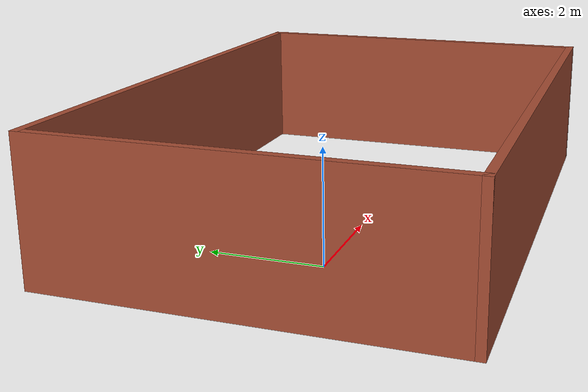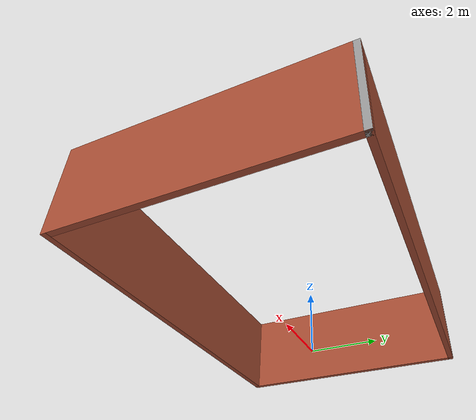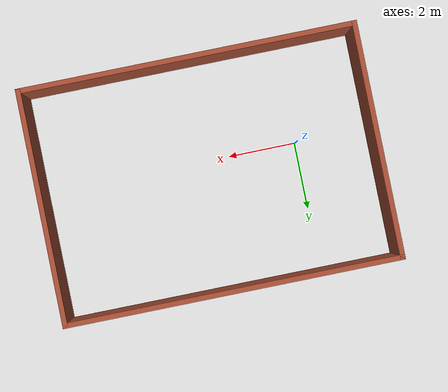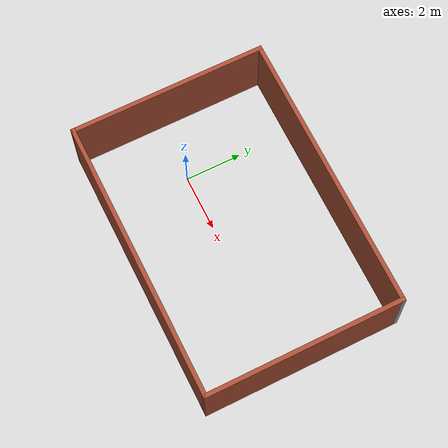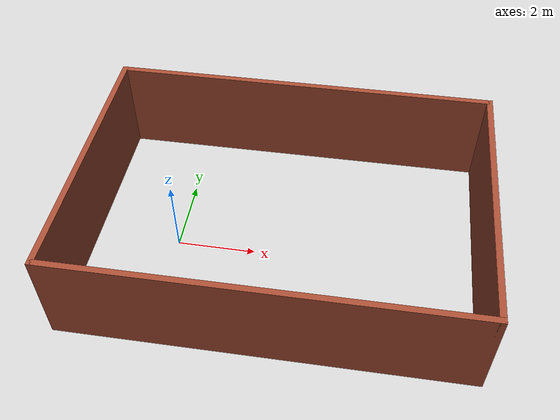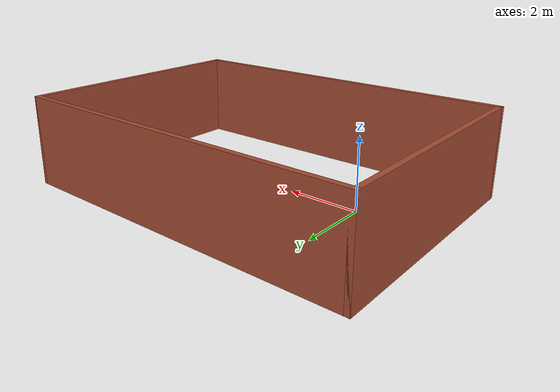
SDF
<?xml version='1.0'?>
<sdf version='1.7'>
  <model name='stockroom'>
    <pose>2.694 0.4545 0 0 -0 0</pose>
    <link name='Wall_11'>
      <collision name='Wall_11_Collision'>
        <geometry>
          <box>
            <size>10 0.15 2.5</size>
          </box>
        </geometry>
        <pose>0 0 1.25 0 -0 0</pose>
      </collision>
      <visual name='Wall_11_Visual'>
        <pose>0 0 1.25 0 -0 0</pose>
        <geometry>
          <box>
            <size>10 0.15 2.5</size>
          </box>
        </geometry>
        <material>
          <script>
            <uri>file://media/materials/scripts/gazebo.material</uri>
            <name>Gazebo/Bricks</name>
          </script>
          <ambient>1 1 1 1</ambient>
        </material>
        <meta>
          <layer>0</layer>
        </meta>
      </visual>
      <pose>0 -3.425 0 0 -0 0</pose>
    </link>
    <link name='Wall_14'>
      <collision name='Wall_14_Collision'>
        <geometry>
          <box>
            <size>7 0.15 2.5</size>
          </box>
        </geometry>
        <pose>0 0 1.25 0 -0 0</pose>
      </collision>
      <visual name='Wall_14_Visual'>
        <pose>0 0 1.25 0 -0 0</pose>
        <geometry>
          <box>
            <size>7 0.15 2.5</size>
          </box>
        </geometry>
        <material>
          <script>
            <uri>file://media/materials/scripts/gazebo.material</uri>
            <name>Gazebo/Bricks</name>
          </script>
          <ambient>1 1 1 1</ambient>
        </material>
        <meta>
          <layer>0</layer>
        </meta>
      </visual>
      <pose>4.925 0 0 0 -0 1.5708</pose>
    </link>
    <link name='Wall_15'>
      <collision name='Wall_15_Collision'>
        <geometry>
          <box>
            <size>0.15 0.15 2.5</size>
          </box>
        </geometry>
        <pose>0 0 1.25 0 -0 0</pose>
      </collision>
      <visual name='Wall_15_Visual'>
        <pose>0 0 1.25 0 -0 0</pose>
        <geometry>
          <box>
            <size>0.15 0.15 2.5</size>
          </box>
        </geometry>
        <material>
          <script>
            <uri>file://media/materials/scripts/gazebo.material</uri>
            <name>Gazebo/Grey</name>
          </script>
          <ambient>1 1 1 1</ambient>
        </material>
        <meta>
          <layer>0</layer>
        </meta>
      </visual>
      <pose>4.925 3.425 0 0 -0 0</pose>
    </link>
    <link name='Wall_17'>
      <collision name='Wall_17_Collision'>
        <geometry>
          <box>
            <size>10 0.15 2.5</size>
          </box>
        </geometry>
        <pose>0 0 1.25 0 -0 0</pose>
      </collision>
      <visual name='Wall_17_Visual'>
        <pose>0 0 1.25 0 -0 0</pose>
        <geometry>
          <box>
            <size>10 0.15 2.5</size>
          </box>
        </geometry>
        <material>
          <script>
            <uri>file://media/materials/scripts/gazebo.material</uri>
            <name>Gazebo/Bricks</name>
          </script>
          <ambient>1 1 1 1</ambient>
        </material>
        <meta>
          <layer>0</layer>
        </meta>
      </visual>
      <pose>0 3.425 0 0 -0 0</pose>
    </link>
    <link name='Wall_5'>
      <collision name='Wall_5_Collision'>
        <geometry>
          <box>
            <size>7 0.15 2.5</size>
          </box>
        </geometry>
        <pose>0 0 1.25 0 -0 0</pose>
      </collision>
      <visual name='Wall_5_Visual'>
        <pose>0 0 1.25 0 -0 0</pose>
        <geometry>
          <box>
            <size>7 0.15 2.5</size>
          </box>
        </geometry>
        <material>
          <script>
            <uri>file://media/materials/scripts/gazebo.material</uri>
            <name>Gazebo/Bricks</name>
          </script>
          <ambient>1 1 1 1</ambient>
        </material>
        <meta>
          <layer>0</layer>
        </meta>
      </visual>
      <pose>-4.925 0 0 0 -0 1.5708</pose>
    </link>
    <static>1</static>
  </model>
</sdf>
